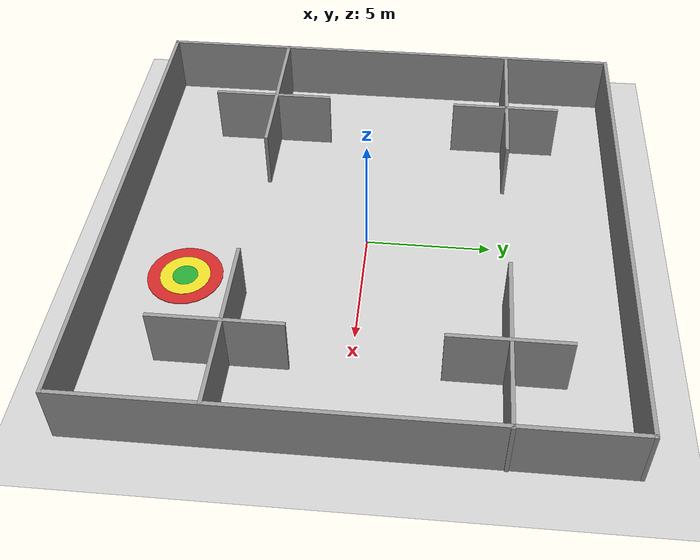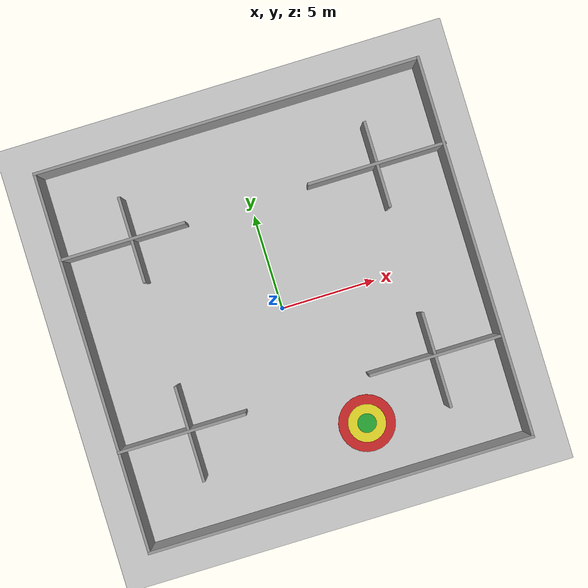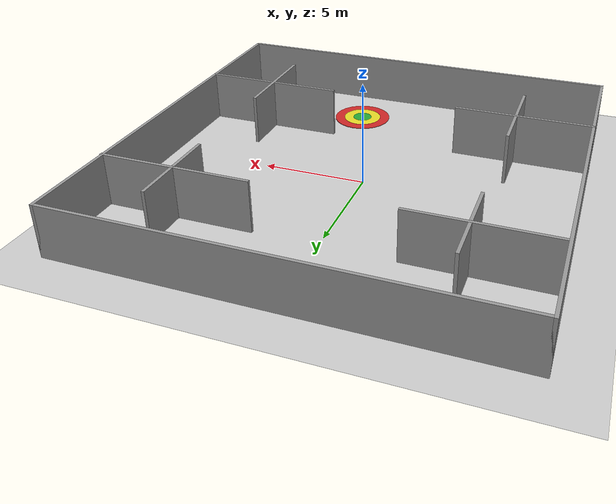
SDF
<sdf version="1.6">
 <world name="default">
  <light name="sun" type="directional">
   <pose>0 0 10 0 -0 0</pose>
   <diffuse>0.8 0.8 0.8 1</diffuse>
   <specular>0.2 0.2 0.2 1</specular>
   <attenuation>
    <range>1000</range>
    <constant>0.9</constant>
    <linear>0.01</linear>
    <quadratic>0.001</quadratic>
   </attenuation>
   <direction>0.5 0.1 -0.9</direction>
  </light>
  <model name="ground_plane">
   <static>1</static>
   <link name="link">
    <collision name="collision">
     <geometry><plane><normal>0 0 1</normal><size>100 100</size></plane></geometry>
     <surface><friction><ode><mu>100</mu><mu2>50</mu2></ode></friction></surface>
    </collision>
    <visual name="visual">
     <cast_shadows>0</cast_shadows>
     <geometry><plane><normal>0 0 1</normal><size>100 100</size></plane></geometry>
     <material>
      <script><uri>file://media/materials/scripts/gazebo.material</uri><name>Gazebo/Grey</name></script>
     </material>
    </visual>
    <velocity_decay><linear>0</linear><angular>0</angular></velocity_decay>
   </link>
  </model>
  <scene><ambient>0.4 0.4 0.4 1</ambient><background>0.7 0.7 0.7 1</background><shadows>0</shadows></scene>
  <physics name="default_physics" default="0" type="ode">
   <max_step_size>0.01</max_step_size>
   <real_time_factor>1</real_time_factor>
   <real_time_update_rate>0</real_time_update_rate>
  </physics>
  <gravity>0 0 -9.8</gravity>
  <magnetic_field>6e-06 2.3e-05 -4.2e-05</magnetic_field>
  <atmosphere type="adiabatic"/>
  <spherical_coordinates>
   <surface_model>EARTH_WGS84</surface_model>
   <latitude_deg>0</latitude_deg>
   <longitude_deg>0</longitude_deg>
   <elevation>0</elevation>
   <heading_deg>0</heading_deg>
  </spherical_coordinates>
  <model name="Train_Building">
   <pose>0.120776 0.119637 0 0 -0 0</pose>
   <link name="Wall_10">
    <collision name="Wall_10_Collision">
     <geometry><box><size>20.25 0.15 2.5</size></box></geometry>
     <pose>0 0 1.25 0 -0 0</pose>
    </collision>
    <visual name="Wall_10_Visual">
     <pose>0 0 1.25 0 -0 0</pose>
     <geometry><box><size>20.25 0.15 2.5</size></box></geometry>
     <material>
      <script><uri>file://media/materials/scripts/gazebo.material</uri><name>Gazebo/Grey</name></script>
      <ambient>1 1 1 1</ambient>
     </material>
     <meta><layer>0</layer></meta>
    </visual>
    <pose>-0.01568 -9.925 0 0 -0 0</pose>
   </link>
   <link name="Wall_11">
    <collision name="Wall_11_Collision">
     <geometry><box><size>20 0.15 2.5</size></box></geometry>
     <pose>0 0 1.25 0 -0 0</pose>
    </collision>
    <visual name="Wall_11_Visual">
     <pose>0 0 1.25 0 -0 0</pose>
     <geometry><box><size>20 0.15 2.5</size></box></geometry>
     <material>
      <script><uri>file://media/materials/scripts/gazebo.material</uri><name>Gazebo/Grey</name></script>
      <ambient>1 1 1 1</ambient>
     </material>
     <meta><layer>0</layer></meta>
    </visual>
    <pose>10.0343 0 0 0 -0 1.5708</pose>
   </link>
   <link name="Wall_26">
    <collision name="Wall_26_Collision">
     <geometry><box><size>6.75 0.15 2.5</size></box></geometry>
     <pose>0 0 1.25 0 -0 0</pose>
    </collision>
    <visual name="Wall_26_Visual">
     <pose>0 0 1.25 0 -0 0</pose>
     <geometry><box><size>6.75 0.15 2.5</size></box></geometry>
     <material>
      <script><uri>file://media/materials/scripts/gazebo.material</uri><name>Gazebo/Grey</name></script>
      <ambient>1 1 1 1</ambient>
     </material>
     <meta><layer>0</layer></meta>
    </visual>
    <pose>-6.77344 -4.66244 0 0 -0 0</pose>
   </link>
   <link name="Wall_28">
    <collision name="Wall_28_Collision">
     <geometry><box><size>7 0.15 2.5</size></box></geometry>
     <pose>0 0 1.25 0 -0 0</pose>
    </collision>
    <visual name="Wall_28_Visual">
     <pose>0 0 1.25 0 -0 0</pose>
     <geometry><box><size>7 0.15 2.5</size></box></geometry>
     <material>
      <script><uri>file://media/materials/scripts/gazebo.material</uri><name>Gazebo/Grey</name></script>
      <ambient>1 1 1 1</ambient>
     </material>
     <meta><layer>0</layer></meta>
    </visual>
    <pose>6.56753 -4.62199 0 0 -0 3.14159</pose>
   </link>
   <link name="Wall_30">
    <collision name="Wall_30_Collision">
     <geometry><box><size>6.5 0.15 2.5</size></box></geometry>
     <pose>0 0 1.25 0 -0 0</pose>
    </collision>
    <visual name="Wall_30_Visual">
     <pose>0 0 1.25 0 -0 0</pose>
     <geometry><box><size>6.5 0.15 2.5</size></box></geometry>
     <material>
      <script><uri>file://media/materials/scripts/gazebo.material</uri><name>Gazebo/Grey</name></script>
      <ambient>1 1 1 1</ambient>
     </material>
     <meta><layer>0</layer></meta>
    </visual>
    <pose>-6.77707 5.411 0 0 -0 0</pose>
   </link>
   <link name="Wall_32">
    <collision name="Wall_32_Collision">
     <geometry><box><size>7.25 0.15 2.5</size></box></geometry>
     <pose>0 0 1.25 0 -0 0</pose>
    </collision>
    <visual name="Wall_32_Visual">
     <pose>0 0 1.25 0 -0 0</pose>
     <geometry><box><size>7.25 0.15 2.5</size></box></geometry>
     <material>
      <script><uri>file://media/materials/scripts/gazebo.material</uri><name>Gazebo/Grey</name></script>
      <ambient>1 1 1 1</ambient>
     </material>
     <meta><layer>0</layer></meta>
    </visual>
    <pose>6.52344 5.45145 0 0 -0 3.14159</pose>
   </link>
   <link name="Wall_34">
    <collision name="Wall_34_Collision">
     <geometry><box><size>4.5 0.15 2.5</size></box></geometry>
     <pose>0 0 1.25 0 -0 0</pose>
    </collision>
    <visual name="Wall_34_Visual">
     <pose>0 0 1.25 0 -0 0</pose>
     <geometry><box><size>4.5 0.15 2.5</size></box></geometry>
     <material>
      <script><uri>file://media/materials/scripts/gazebo.material</uri><name>Gazebo/Grey</name></script>
      <ambient>1 1 1 1</ambient>
     </material>
     <meta><layer>0</layer></meta>
    </visual>
    <pose>-6.359 5.35775 0 0 -0 1.5708</pose>
   </link>
   <link name="Wall_36">
    <collision name="Wall_36_Collision">
     <geometry><box><size>4.5 0.15 2.5</size></box></geometry>
     <pose>0 0 1.25 0 -0 0</pose>
    </collision>
    <visual name="Wall_36_Visual">
     <pose>0 0 1.25 0 -0 0</pose>
     <geometry><box><size>4.5 0.15 2.5</size></box></geometry>
     <material>
      <script><uri>file://media/materials/scripts/gazebo.material</uri><name>Gazebo/Grey</name></script>
      <ambient>1 1 1 1</ambient>
     </material>
     <meta><layer>0</layer></meta>
    </visual>
    <pose>6.52812 5.40427 0 0 -0 1.5708</pose>
   </link>
   <link name="Wall_38">
    <collision name="Wall_38_Collision">
     <geometry><box><size>5 0.15 2.5</size></box></geometry>
     <pose>0 0 1.25 0 -0 0</pose>
    </collision>
    <visual name="Wall_38_Visual">
     <pose>0 0 1.25 0 -0 0</pose>
     <geometry><box><size>5 0.15 2.5</size></box></geometry>
     <material>
      <script><uri>file://media/materials/scripts/gazebo.material</uri><name>Gazebo/Grey</name></script>
      <ambient>1 1 1 1</ambient>
     </material>
     <meta><layer>0</layer></meta>
    </visual>
    <pose>6.52812 -4.85479 0 0 0 -1.5708</pose>
   </link>
   <link name="Wall_41">
    <collision name="Wall_41_Collision">
     <geometry><box><size>5 0.15 2.5</size></box></geometry>
     <pose>0 0 1.25 0 -0 0</pose>
    </collision>
    <visual name="Wall_41_Visual">
     <pose>0 0 1.25 0 -0 0</pose>
     <geometry><box><size>5 0.15 2.5</size></box></geometry>
     <material>
      <script><uri>file://media/materials/scripts/gazebo.material</uri><name>Gazebo/Grey</name></script>
      <ambient>1 1 1 1</ambient>
     </material>
     <meta><layer>0</layer></meta>
    </visual>
    <pose>-6.40553 -4.80827 0 0 0 -1.5708</pose>
   </link>
   <link name="Wall_5">
    <collision name="Wall_5_Collision">
     <geometry><box><size>20.25 0.15 2.5</size></box></geometry>
     <pose>0 0 1.25 0 -0 0</pose>
    </collision>
    <visual name="Wall_5_Visual">
     <pose>0 0 1.25 0 -0 0</pose>
     <geometry><box><size>20.25 0.15 2.5</size></box></geometry>
     <material>
      <script><uri>file://media/materials/scripts/gazebo.material</uri><name>Gazebo/Grey</name></script>
      <ambient>1 1 1 1</ambient>
     </material>
     <meta><layer>0</layer></meta>
    </visual>
    <pose>-0.01568 9.925 0 0 -0 0</pose>
   </link>
   <link name="Wall_8">
    <collision name="Wall_8_Collision">
     <geometry><box><size>20 0.15 2.5</size></box></geometry>
     <pose>0 0 1.25 0 -0 0</pose>
    </collision>
    <visual name="Wall_8_Visual">
     <pose>0 0 1.25 0 -0 0</pose>
     <geometry><box><size>20 0.15 2.5</size></box></geometry>
     <material>
      <script><uri>file://media/materials/scripts/gazebo.material</uri><name>Gazebo/Grey</name></script>
      <ambient>1 1 1 1</ambient>
     </material>
     <meta><layer>0</layer></meta>
    </visual>
    <pose>-10.0657 0 0 0 0 -1.5708</pose>
   </link>
   <static>1</static>
  </model>
  <model name="Target">
   <static>1</static>
   <link name="green">
    <visual name="visual">
     <geometry><cylinder><radius>0.5</radius><length>0.05</length></cylinder></geometry>
     <material>
      <script><uri>file://media/materials/scripts/gazebo.material</uri><name>Gazebo/Green</name></script>
      <ambient>1 1 1 1</ambient>
     </material>
     <cast_shadows>0</cast_shadows>
    </visual>
   </link>
   <link name="yellow">
    <visual name="visual">
     <geometry><cylinder><radius>1</radius><length>0.04</length></cylinder></geometry>
     <material>
      <script><uri>file://media/materials/scripts/gazebo.material</uri><name>Gazebo/Yellow</name></script>
      <ambient>1 1 1 1</ambient>
     </material>
     <cast_shadows>0</cast_shadows>
    </visual>
   </link>
   <link name="red">
    <visual name="visual">
     <geometry><cylinder><radius>1.5</radius><length>0.03</length></cylinder></geometry>
     <material>
      <script><uri>file://media/materials/scripts/gazebo.material</uri><name>Gazebo/Red</name></script>
      <ambient>1 1 1 1</ambient>
     </material>
     <cast_shadows>0</cast_shadows>
    </visual>
   </link>
   <pose>2.47575 -7 0 0 -0 0</pose>
  </model>
 </world>
</sdf>
